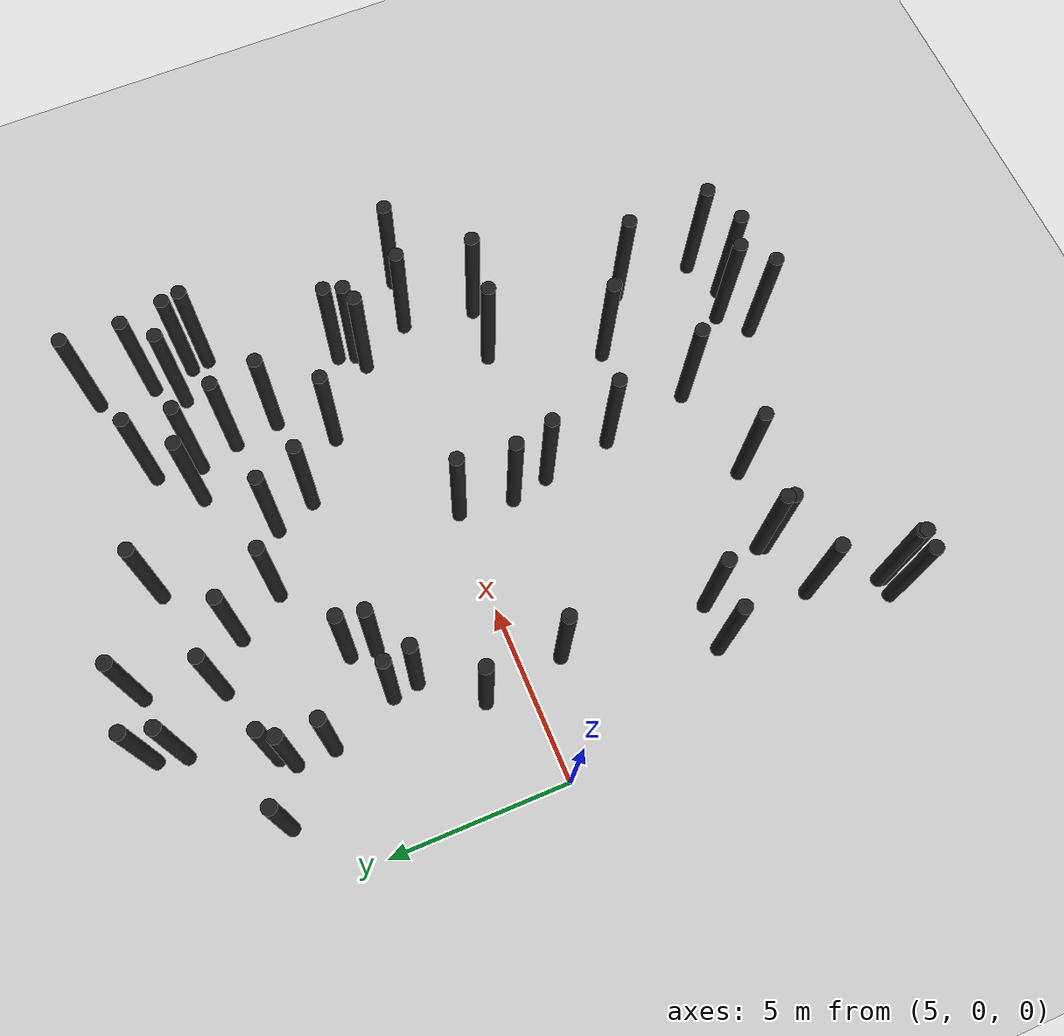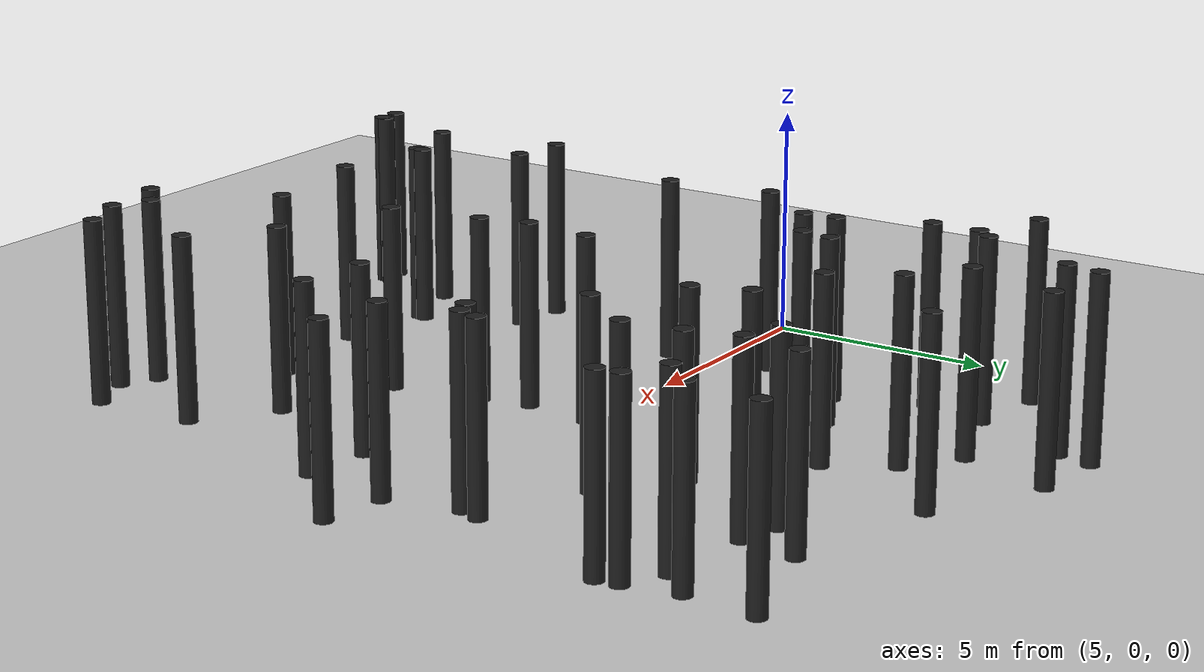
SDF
<sdf version="1.5">
 <world name="default">
  <model name="ground_plane">
   <static>1</static>
   <link name="link">
    <collision name="collision">
     <geometry><plane><normal>0 0 1</normal><size>200 200</size></plane></geometry>
     <surface><friction><ode><mu>100</mu><mu2>50</mu2></ode></friction></surface>
    </collision>
    <visual name="visual">
     <cast_shadows>0</cast_shadows>
     <geometry><plane><normal>0 0 1</normal><size>200 200</size></plane></geometry>
     <material>
      <script><uri>file://media/materials/scripts/gazebo.material</uri><name>Gazebo/Grey</name></script>
     </material>
    </visual>
   </link>
  </model>
  <model name="forest_clone_0">
   <pose>12.895 -0.119089 0.004441 0 -0 0</pose>
   <static>1</static>
   <link name="cylinder::link">
    <inertial>
     <mass>1</mass>
     <inertia><ixx>0.083</ixx><ixy>0</ixy><ixz>0</ixz><iyy>0.083</iyy><iyz>0</iyz><izz>0.083</izz></inertia>
    </inertial>
    <collision name="collision">
     <geometry><cylinder><radius>0.2</radius><length>4</length></cylinder></geometry>
    </collision>
    <visual name="visual">
     <geometry><cylinder><radius>0.2</radius><length>4</length></cylinder></geometry>
     <material>
      <script><uri>file://media/materials/scripts/gazebo.material</uri><name>Gazebo/Black</name></script>
     </material>
    </visual>
    <pose>0 0 2 0 -0 0</pose>
   </link>
  </model>
  <model name="forest_clone_3">
   <pose>15.7148 -9.32065 0.003944 0 -0 0</pose>
   <static>1</static>
   <link name="cylinder::link">
    <inertial>
     <mass>1</mass>
     <inertia><ixx>0.083</ixx><ixy>0</ixy><ixz>0</ixz><iyy>0.083</iyy><iyz>0</iyz><izz>0.083</izz></inertia>
    </inertial>
    <collision name="collision">
     <geometry><cylinder><radius>0.2</radius><length>4</length></cylinder></geometry>
    </collision>
    <visual name="visual">
     <geometry><cylinder><radius>0.2</radius><length>4</length></cylinder></geometry>
     <material>
      <script><uri>file://media/materials/scripts/gazebo.material</uri><name>Gazebo/Black</name></script>
     </material>
    </visual>
    <pose>0 0 2 0 -0 0</pose>
   </link>
  </model>
  <model name="forest_clone_4">
   <pose>9.53524 9.62866 0.001802 0 -0 0</pose>
   <static>1</static>
   <link name="cylinder::link">
    <inertial>
     <mass>1</mass>
     <inertia><ixx>0.083</ixx><ixy>0</ixy><ixz>0</ixz><iyy>0.083</iyy><iyz>0</iyz><izz>0.083</izz></inertia>
    </inertial>
    <collision name="collision">
     <geometry><cylinder><radius>0.2</radius><length>4</length></cylinder></geometry>
    </collision>
    <visual name="visual">
     <geometry><cylinder><radius>0.2</radius><length>4</length></cylinder></geometry>
     <material>
      <script><uri>file://media/materials/scripts/gazebo.material</uri><name>Gazebo/Black</name></script>
     </material>
    </visual>
    <pose>0 0 2 0 -0 0</pose>
   </link>
  </model>
  <model name="forest_clone_12">
   <pose>10.5715 7.4024 -0.003288 0 -0 0</pose>
   <static>1</static>
   <link name="cylinder::link">
    <inertial>
     <mass>1</mass>
     <inertia><ixx>0.083</ixx><ixy>0</ixy><ixz>0</ixz><iyy>0.083</iyy><iyz>0</iyz><izz>0.083</izz></inertia>
    </inertial>
    <collision name="collision">
     <geometry><cylinder><radius>0.2</radius><length>4</length></cylinder></geometry>
    </collision>
    <visual name="visual">
     <geometry><cylinder><radius>0.2</radius><length>4</length></cylinder></geometry>
     <material>
      <script><uri>file://media/materials/scripts/gazebo.material</uri><name>Gazebo/Black</name></script>
     </material>
    </visual>
    <pose>0 0 2 0 -0 0</pose>
   </link>
  </model>
  <model name="forest_clone_16">
   <pose>15.8736 -5.74239 0.003533 0 -0 0</pose>
   <static>1</static>
   <link name="cylinder::link">
    <inertial>
     <mass>1</mass>
     <inertia><ixx>0.083</ixx><ixy>0</ixy><ixz>0</ixz><iyy>0.083</iyy><iyz>0</iyz><izz>0.083</izz></inertia>
    </inertial>
    <collision name="collision">
     <geometry><cylinder><radius>0.2</radius><length>4</length></cylinder></geometry>
    </collision>
    <visual name="visual">
     <geometry><cylinder><radius>0.2</radius><length>4</length></cylinder></geometry>
     <material>
      <script><uri>file://media/materials/scripts/gazebo.material</uri><name>Gazebo/Black</name></script>
     </material>
    </visual>
    <pose>0 0 2 0 -0 0</pose>
   </link>
  </model>
  <model name="forest_clone_17">
   <pose>19.9042 5.30619 -0.004813 0 -0 0</pose>
   <static>1</static>
   <link name="cylinder::link">
    <inertial>
     <mass>1</mass>
     <inertia><ixx>0.083</ixx><ixy>0</ixy><ixz>0</ixz><iyy>0.083</iyy><iyz>0</iyz><izz>0.083</izz></inertia>
    </inertial>
    <collision name="collision">
     <geometry><cylinder><radius>0.2</radius><length>4</length></cylinder></geometry>
    </collision>
    <visual name="visual">
     <geometry><cylinder><radius>0.2</radius><length>4</length></cylinder></geometry>
     <material>
      <script><uri>file://media/materials/scripts/gazebo.material</uri><name>Gazebo/Black</name></script>
     </material>
    </visual>
    <pose>0 0 2 0 -0 0</pose>
   </link>
  </model>
  <model name="forest_clone_24">
   <pose>8.09345 6.32276 0.001507 0 -0 0</pose>
   <static>1</static>
   <link name="cylinder::link">
    <inertial>
     <mass>1</mass>
     <inertia><ixx>0.083</ixx><ixy>0</ixy><ixz>0</ixz><iyy>0.083</iyy><iyz>0</iyz><izz>0.083</izz></inertia>
    </inertial>
    <collision name="collision">
     <geometry><cylinder><radius>0.2</radius><length>4</length></cylinder></geometry>
    </collision>
    <visual name="visual">
     <geometry><cylinder><radius>0.2</radius><length>4</length></cylinder></geometry>
     <material>
      <script><uri>file://media/materials/scripts/gazebo.material</uri><name>Gazebo/Black</name></script>
     </material>
    </visual>
    <pose>0 0 2 0 -0 0</pose>
   </link>
  </model>
  <model name="forest_clone_25">
   <pose>13.8201 -7.30259 -0.001052 0 -0 0</pose>
   <static>1</static>
   <link name="cylinder::link">
    <inertial>
     <mass>1</mass>
     <inertia><ixx>0.083</ixx><ixy>0</ixy><ixz>0</ixz><iyy>0.083</iyy><iyz>0</iyz><izz>0.083</izz></inertia>
    </inertial>
    <collision name="collision">
     <geometry><cylinder><radius>0.2</radius><length>4</length></cylinder></geometry>
    </collision>
    <visual name="visual">
     <geometry><cylinder><radius>0.2</radius><length>4</length></cylinder></geometry>
     <material>
      <script><uri>file://media/materials/scripts/gazebo.material</uri><name>Gazebo/Black</name></script>
     </material>
    </visual>
    <pose>0 0 2 0 -0 0</pose>
   </link>
  </model>
  <model name="forest_clone_28">
   <pose>8.89961 -7.26019 -0.000283 0 -0 0</pose>
   <static>1</static>
   <link name="cylinder::link">
    <inertial>
     <mass>1</mass>
     <inertia><ixx>0.083</ixx><ixy>0</ixy><ixz>0</ixz><iyy>0.083</iyy><iyz>0</iyz><izz>0.083</izz></inertia>
    </inertial>
    <collision name="collision">
     <geometry><cylinder><radius>0.2</radius><length>4</length></cylinder></geometry>
    </collision>
    <visual name="visual">
     <geometry><cylinder><radius>0.2</radius><length>4</length></cylinder></geometry>
     <material>
      <script><uri>file://media/materials/scripts/gazebo.material</uri><name>Gazebo/Black</name></script>
     </material>
    </visual>
    <pose>0 0 2 0 -0 0</pose>
   </link>
  </model>
  <model name="forest_clone_29">
   <pose>14.739 3.50483 -0.00413 0 -0 0</pose>
   <static>1</static>
   <link name="cylinder::link">
    <inertial>
     <mass>1</mass>
     <inertia><ixx>0.083</ixx><ixy>0</ixy><ixz>0</ixz><iyy>0.083</iyy><iyz>0</iyz><izz>0.083</izz></inertia>
    </inertial>
    <collision name="collision">
     <geometry><cylinder><radius>0.2</radius><length>4</length></cylinder></geometry>
    </collision>
    <visual name="visual">
     <geometry><cylinder><radius>0.2</radius><length>4</length></cylinder></geometry>
     <material>
      <script><uri>file://media/materials/scripts/gazebo.material</uri><name>Gazebo/Black</name></script>
     </material>
    </visual>
    <pose>0 0 2 0 -0 0</pose>
   </link>
  </model>
  <model name="forest_clone_30">
   <pose>17.1866 4.89143 -0.004943 0 -0 0</pose>
   <static>1</static>
   <link name="cylinder::link">
    <inertial>
     <mass>1</mass>
     <inertia><ixx>0.083</ixx><ixy>0</ixy><ixz>0</ixz><iyy>0.083</iyy><iyz>0</iyz><izz>0.083</izz></inertia>
    </inertial>
    <collision name="collision">
     <geometry><cylinder><radius>0.2</radius><length>4</length></cylinder></geometry>
    </collision>
    <visual name="visual">
     <geometry><cylinder><radius>0.2</radius><length>4</length></cylinder></geometry>
     <material>
      <script><uri>file://media/materials/scripts/gazebo.material</uri><name>Gazebo/Black</name></script>
     </material>
    </visual>
    <pose>0 0 2 0 -0 0</pose>
   </link>
  </model>
  <model name="forest_clone_33">
   <pose>10.1308 3.35061 7.8e-05 0 -0 0</pose>
   <static>1</static>
   <link name="cylinder::link">
    <inertial>
     <mass>1</mass>
     <inertia><ixx>0.083</ixx><ixy>0</ixy><ixz>0</ixz><iyy>0.083</iyy><iyz>0</iyz><izz>0.083</izz></inertia>
    </inertial>
    <collision name="collision">
     <geometry><cylinder><radius>0.2</radius><length>4</length></cylinder></geometry>
    </collision>
    <visual name="visual">
     <geometry><cylinder><radius>0.2</radius><length>4</length></cylinder></geometry>
     <material>
      <script><uri>file://media/materials/scripts/gazebo.material</uri><name>Gazebo/Black</name></script>
     </material>
    </visual>
    <pose>0 0 2 0 -0 0</pose>
   </link>
  </model>
  <model name="forest_clone_36">
   <pose>8.91176 2.67337 0.003223 0 -0 0</pose>
   <static>1</static>
   <link name="cylinder::link">
    <inertial>
     <mass>1</mass>
     <inertia><ixx>0.083</ixx><ixy>0</ixy><ixz>0</ixz><iyy>0.083</iyy><iyz>0</iyz><izz>0.083</izz></inertia>
    </inertial>
    <collision name="collision">
     <geometry><cylinder><radius>0.2</radius><length>4</length></cylinder></geometry>
    </collision>
    <visual name="visual">
     <geometry><cylinder><radius>0.2</radius><length>4</length></cylinder></geometry>
     <material>
      <script><uri>file://media/materials/scripts/gazebo.material</uri><name>Gazebo/Black</name></script>
     </material>
    </visual>
    <pose>0 0 2 0 -0 0</pose>
   </link>
  </model>
  <model name="forest_clone_37">
   <pose>20.3619 -1.02855 -0.003411 0 -0 0</pose>
   <static>1</static>
   <link name="cylinder::link">
    <inertial>
     <mass>1</mass>
     <inertia><ixx>0.083</ixx><ixy>0</ixy><ixz>0</ixz><iyy>0.083</iyy><iyz>0</iyz><izz>0.083</izz></inertia>
    </inertial>
    <collision name="collision">
     <geometry><cylinder><radius>0.2</radius><length>4</length></cylinder></geometry>
    </collision>
    <visual name="visual">
     <geometry><cylinder><radius>0.2</radius><length>4</length></cylinder></geometry>
     <material>
      <script><uri>file://media/materials/scripts/gazebo.material</uri><name>Gazebo/Black</name></script>
     </material>
    </visual>
    <pose>0 0 2 0 -0 0</pose>
   </link>
  </model>
  <model name="forest_clone_41">
   <pose>19.6946 6.48979 0.004999 0 -0 0</pose>
   <static>1</static>
   <link name="cylinder::link">
    <inertial>
     <mass>1</mass>
     <inertia><ixx>0.083</ixx><ixy>0</ixy><ixz>0</ixz><iyy>0.083</iyy><iyz>0</iyz><izz>0.083</izz></inertia>
    </inertial>
    <collision name="collision">
     <geometry><cylinder><radius>0.2</radius><length>4</length></cylinder></geometry>
    </collision>
    <visual name="visual">
     <geometry><cylinder><radius>0.2</radius><length>4</length></cylinder></geometry>
     <material>
      <script><uri>file://media/materials/scripts/gazebo.material</uri><name>Gazebo/Black</name></script>
     </material>
    </visual>
    <pose>0 0 2 0 -0 0</pose>
   </link>
  </model>
  <model name="forest_clone_43">
   <pose>11.0841 -7.74642 0.00357 0 -0 0</pose>
   <static>1</static>
   <link name="cylinder::link">
    <inertial>
     <mass>1</mass>
     <inertia><ixx>0.083</ixx><ixy>0</ixy><ixz>0</ixz><iyy>0.083</iyy><iyz>0</iyz><izz>0.083</izz></inertia>
    </inertial>
    <collision name="collision">
     <geometry><cylinder><radius>0.2</radius><length>4</length></cylinder></geometry>
    </collision>
    <visual name="visual">
     <geometry><cylinder><radius>0.2</radius><length>4</length></cylinder></geometry>
     <material>
      <script><uri>file://media/materials/scripts/gazebo.material</uri><name>Gazebo/Black</name></script>
     </material>
    </visual>
    <pose>0 0 2 0 -0 0</pose>
   </link>
  </model>
  <model name="forest_clone_44">
   <pose>8.10102 5.26224 0.004867 0 -0 0</pose>
   <static>1</static>
   <link name="cylinder::link">
    <inertial>
     <mass>1</mass>
     <inertia><ixx>0.083</ixx><ixy>0</ixy><ixz>0</ixz><iyy>0.083</iyy><iyz>0</iyz><izz>0.083</izz></inertia>
    </inertial>
    <collision name="collision">
     <geometry><cylinder><radius>0.2</radius><length>4</length></cylinder></geometry>
    </collision>
    <visual name="visual">
     <geometry><cylinder><radius>0.2</radius><length>4</length></cylinder></geometry>
     <material>
      <script><uri>file://media/materials/scripts/gazebo.material</uri><name>Gazebo/Black</name></script>
     </material>
    </visual>
    <pose>0 0 2 0 -0 0</pose>
   </link>
  </model>
  <model name="forest_clone_46">
   <pose>16.478 -9.71496 0.002215 0 -0 0</pose>
   <static>1</static>
   <link name="cylinder::link">
    <inertial>
     <mass>1</mass>
     <inertia><ixx>0.083</ixx><ixy>0</ixy><ixz>0</ixz><iyy>0.083</iyy><iyz>0</iyz><izz>0.083</izz></inertia>
    </inertial>
    <collision name="collision">
     <geometry><cylinder><radius>0.2</radius><length>4</length></cylinder></geometry>
    </collision>
    <visual name="visual">
     <geometry><cylinder><radius>0.2</radius><length>4</length></cylinder></geometry>
     <material>
      <script><uri>file://media/materials/scripts/gazebo.material</uri><name>Gazebo/Black</name></script>
     </material>
    </visual>
    <pose>0 0 2 0 -0 0</pose>
   </link>
  </model>
  <model name="forest_clone_47">
   <pose>17.0673 7.25604 0.001037 0 -0 0</pose>
   <static>1</static>
   <link name="cylinder::link">
    <inertial>
     <mass>1</mass>
     <inertia><ixx>0.083</ixx><ixy>0</ixy><ixz>0</ixz><iyy>0.083</iyy><iyz>0</iyz><izz>0.083</izz></inertia>
    </inertial>
    <collision name="collision">
     <geometry><cylinder><radius>0.2</radius><length>4</length></cylinder></geometry>
    </collision>
    <visual name="visual">
     <geometry><cylinder><radius>0.2</radius><length>4</length></cylinder></geometry>
     <material>
      <script><uri>file://media/materials/scripts/gazebo.material</uri><name>Gazebo/Black</name></script>
     </material>
    </visual>
    <pose>0 0 2 0 -0 0</pose>
   </link>
  </model>
  <model name="forest_clone_49">
   <pose>8.13733 -1.08873 0.002568 0 -0 0</pose>
   <static>1</static>
   <link name="cylinder::link">
    <inertial>
     <mass>1</mass>
     <inertia><ixx>0.083</ixx><ixy>0</ixy><ixz>0</ixz><iyy>0.083</iyy><iyz>0</iyz><izz>0.083</izz></inertia>
    </inertial>
    <collision name="collision">
     <geometry><cylinder><radius>0.2</radius><length>4</length></cylinder></geometry>
    </collision>
    <visual name="visual">
     <geometry><cylinder><radius>0.2</radius><length>4</length></cylinder></geometry>
     <material>
      <script><uri>file://media/materials/scripts/gazebo.material</uri><name>Gazebo/Black</name></script>
     </material>
    </visual>
    <pose>0 0 2 0 -0 0</pose>
   </link>
  </model>
  <model name="forest_clone_50">
   <pose>12.7163 -1.64901 0.000883 0 -0 0</pose>
   <static>1</static>
   <link name="cylinder::link">
    <inertial>
     <mass>1</mass>
     <inertia><ixx>0.083</ixx><ixy>0</ixy><ixz>0</ixz><iyy>0.083</iyy><iyz>0</iyz><izz>0.083</izz></inertia>
    </inertial>
    <collision name="collision">
     <geometry><cylinder><radius>0.2</radius><length>4</length></cylinder></geometry>
    </collision>
    <visual name="visual">
     <geometry><cylinder><radius>0.2</radius><length>4</length></cylinder></geometry>
     <material>
      <script><uri>file://media/materials/scripts/gazebo.material</uri><name>Gazebo/Black</name></script>
     </material>
    </visual>
    <pose>0 0 2 0 -0 0</pose>
   </link>
  </model>
  <model name="forest_clone_52">
   <pose>18.8923 -0.807575 -0.00393 0 -0 0</pose>
   <static>1</static>
   <link name="cylinder::link">
    <inertial>
     <mass>1</mass>
     <inertia><ixx>0.083</ixx><ixy>0</ixy><ixz>0</ixz><iyy>0.083</iyy><iyz>0</iyz><izz>0.083</izz></inertia>
    </inertial>
    <collision name="collision">
     <geometry><cylinder><radius>0.2</radius><length>4</length></cylinder></geometry>
    </collision>
    <visual name="visual">
     <geometry><cylinder><radius>0.2</radius><length>4</length></cylinder></geometry>
     <material>
      <script><uri>file://media/materials/scripts/gazebo.material</uri><name>Gazebo/Black</name></script>
     </material>
    </visual>
    <pose>0 0 2 0 -0 0</pose>
   </link>
  </model>
  <model name="forest_clone_56">
   <pose>13.3333 -4.74511 -0.001684 0 -0 0</pose>
   <static>1</static>
   <link name="cylinder::link">
    <inertial>
     <mass>1</mass>
     <inertia><ixx>0.083</ixx><ixy>0</ixy><ixz>0</ixz><iyy>0.083</iyy><iyz>0</iyz><izz>0.083</izz></inertia>
    </inertial>
    <collision name="collision">
     <geometry><cylinder><radius>0.2</radius><length>4</length></cylinder></geometry>
    </collision>
    <visual name="visual">
     <geometry><cylinder><radius>0.2</radius><length>4</length></cylinder></geometry>
     <material>
      <script><uri>file://media/materials/scripts/gazebo.material</uri><name>Gazebo/Black</name></script>
     </material>
    </visual>
    <pose>0 0 2 0 -0 0</pose>
   </link>
  </model>
  <model name="forest_clone_62">
   <pose>18.6636 1.31163 -0.003035 0 -0 0</pose>
   <static>1</static>
   <link name="cylinder::link">
    <inertial>
     <mass>1</mass>
     <inertia><ixx>0.083</ixx><ixy>0</ixy><ixz>0</ixz><iyy>0.083</iyy><iyz>0</iyz><izz>0.083</izz></inertia>
    </inertial>
    <collision name="collision">
     <geometry><cylinder><radius>0.2</radius><length>4</length></cylinder></geometry>
    </collision>
    <visual name="visual">
     <geometry><cylinder><radius>0.2</radius><length>4</length></cylinder></geometry>
     <material>
      <script><uri>file://media/materials/scripts/gazebo.material</uri><name>Gazebo/Black</name></script>
     </material>
    </visual>
    <pose>0 0 2 0 -0 0</pose>
   </link>
  </model>
  <model name="forest_clone_65">
   <pose>16.9036 5.99752 0.004273 0 -0 0</pose>
   <static>1</static>
   <link name="cylinder::link">
    <inertial>
     <mass>1</mass>
     <inertia><ixx>0.083</ixx><ixy>0</ixy><ixz>0</ixz><iyy>0.083</iyy><iyz>0</iyz><izz>0.083</izz></inertia>
    </inertial>
    <collision name="collision">
     <geometry><cylinder><radius>0.2</radius><length>4</length></cylinder></geometry>
    </collision>
    <visual name="visual">
     <geometry><cylinder><radius>0.2</radius><length>4</length></cylinder></geometry>
     <material>
      <script><uri>file://media/materials/scripts/gazebo.material</uri><name>Gazebo/Black</name></script>
     </material>
    </visual>
    <pose>0 0 2 0 -0 0</pose>
   </link>
  </model>
  <model name="forest_clone_66">
   <pose>14.3192 4.64638 -0.00458 0 -0 0</pose>
   <static>1</static>
   <link name="cylinder::link">
    <inertial>
     <mass>1</mass>
     <inertia><ixx>0.083</ixx><ixy>0</ixy><ixz>0</ixz><iyy>0.083</iyy><iyz>0</iyz><izz>0.083</izz></inertia>
    </inertial>
    <collision name="collision">
     <geometry><cylinder><radius>0.2</radius><length>4</length></cylinder></geometry>
    </collision>
    <visual name="visual">
     <geometry><cylinder><radius>0.2</radius><length>4</length></cylinder></geometry>
     <material>
      <script><uri>file://media/materials/scripts/gazebo.material</uri><name>Gazebo/Black</name></script>
     </material>
    </visual>
    <pose>0 0 2 0 -0 0</pose>
   </link>
  </model>
  <model name="forest_clone_69">
   <pose>18.5734 -2.83463 0.00215 0 -0 0</pose>
   <static>1</static>
   <link name="cylinder::link">
    <inertial>
     <mass>1</mass>
     <inertia><ixx>0.083</ixx><ixy>0</ixy><ixz>0</ixz><iyy>0.083</iyy><iyz>0</iyz><izz>0.083</izz></inertia>
    </inertial>
    <collision name="collision">
     <geometry><cylinder><radius>0.2</radius><length>4</length></cylinder></geometry>
    </collision>
    <visual name="visual">
     <geometry><cylinder><radius>0.2</radius><length>4</length></cylinder></geometry>
     <material>
      <script><uri>file://media/materials/scripts/gazebo.material</uri><name>Gazebo/Black</name></script>
     </material>
    </visual>
    <pose>0 0 2 0 -0 0</pose>
   </link>
  </model>
  <model name="forest_clone_70">
   <pose>7.26808 -7.90671 -0.004214 0 -0 0</pose>
   <static>1</static>
   <link name="cylinder::link">
    <inertial>
     <mass>1</mass>
     <inertia><ixx>0.083</ixx><ixy>0</ixy><ixz>0</ixz><iyy>0.083</iyy><iyz>0</iyz><izz>0.083</izz></inertia>
    </inertial>
    <collision name="collision">
     <geometry><cylinder><radius>0.2</radius><length>4</length></cylinder></geometry>
    </collision>
    <visual name="visual">
     <geometry><cylinder><radius>0.2</radius><length>4</length></cylinder></geometry>
     <material>
      <script><uri>file://media/materials/scripts/gazebo.material</uri><name>Gazebo/Black</name></script>
     </material>
    </visual>
    <pose>0 0 2 0 -0 0</pose>
   </link>
  </model>
  <model name="forest_clone_71">
   <pose>9.34179 8.84565 -0.003508 0 -0 0</pose>
   <static>1</static>
   <link name="cylinder::link">
    <inertial>
     <mass>1</mass>
     <inertia><ixx>0.083</ixx><ixy>0</ixy><ixz>0</ixz><iyy>0.083</iyy><iyz>0</iyz><izz>0.083</izz></inertia>
    </inertial>
    <collision name="collision">
     <geometry><cylinder><radius>0.2</radius><length>4</length></cylinder></geometry>
    </collision>
    <visual name="visual">
     <geometry><cylinder><radius>0.2</radius><length>4</length></cylinder></geometry>
     <material>
      <script><uri>file://media/materials/scripts/gazebo.material</uri><name>Gazebo/Black</name></script>
     </material>
    </visual>
    <pose>0 0 2 0 -0 0</pose>
   </link>
  </model>
  <model name="forest_clone_72">
   <pose>8.85757 -7.4371 -0.003389 0 -0 0</pose>
   <static>1</static>
   <link name="cylinder::link">
    <inertial>
     <mass>1</mass>
     <inertia><ixx>0.083</ixx><ixy>0</ixy><ixz>0</ixz><iyy>0.083</iyy><iyz>0</iyz><izz>0.083</izz></inertia>
    </inertial>
    <collision name="collision">
     <geometry><cylinder><radius>0.2</radius><length>4</length></cylinder></geometry>
    </collision>
    <visual name="visual">
     <geometry><cylinder><radius>0.2</radius><length>4</length></cylinder></geometry>
     <material>
      <script><uri>file://media/materials/scripts/gazebo.material</uri><name>Gazebo/Black</name></script>
     </material>
    </visual>
    <pose>0 0 2 0 -0 0</pose>
   </link>
  </model>
  <model name="forest_clone_81">
   <pose>11.2344 9.44016 -0.001796 0 -0 0</pose>
   <static>1</static>
   <link name="cylinder::link">
    <inertial>
     <mass>1</mass>
     <inertia><ixx>0.083</ixx><ixy>0</ixy><ixz>0</ixz><iyy>0.083</iyy><iyz>0</iyz><izz>0.083</izz></inertia>
    </inertial>
    <collision name="collision">
     <geometry><cylinder><radius>0.2</radius><length>4</length></cylinder></geometry>
    </collision>
    <visual name="visual">
     <geometry><cylinder><radius>0.2</radius><length>4</length></cylinder></geometry>
     <material>
      <script><uri>file://media/materials/scripts/gazebo.material</uri><name>Gazebo/Black</name></script>
     </material>
    </visual>
    <pose>0 0 2 0 -0 0</pose>
   </link>
  </model>
  <model name="forest_clone_85">
   <pose>18.0941 0.661912 0.001033 0 -0 0</pose>
   <static>1</static>
   <link name="cylinder::link">
    <inertial>
     <mass>1</mass>
     <inertia><ixx>0.083</ixx><ixy>0</ixy><ixz>0</ixz><iyy>0.083</iyy><iyz>0</iyz><izz>0.083</izz></inertia>
    </inertial>
    <collision name="collision">
     <geometry><cylinder><radius>0.2</radius><length>4</length></cylinder></geometry>
    </collision>
    <visual name="visual">
     <geometry><cylinder><radius>0.2</radius><length>4</length></cylinder></geometry>
     <material>
      <script><uri>file://media/materials/scripts/gazebo.material</uri><name>Gazebo/Black</name></script>
     </material>
    </visual>
    <pose>0 0 2 0 -0 0</pose>
   </link>
  </model>
  <model name="forest_clone_87">
   <pose>7.9749 -5.21284 -0.002416 0 -0 0</pose>
   <static>1</static>
   <link name="cylinder::link">
    <inertial>
     <mass>1</mass>
     <inertia><ixx>0.083</ixx><ixy>0</ixy><ixz>0</ixz><iyy>0.083</iyy><iyz>0</iyz><izz>0.083</izz></inertia>
    </inertial>
    <collision name="collision">
     <geometry><cylinder><radius>0.2</radius><length>4</length></cylinder></geometry>
    </collision>
    <visual name="visual">
     <geometry><cylinder><radius>0.2</radius><length>4</length></cylinder></geometry>
     <material>
      <script><uri>file://media/materials/scripts/gazebo.material</uri><name>Gazebo/Black</name></script>
     </material>
    </visual>
    <pose>0 0 2 0 -0 0</pose>
   </link>
  </model>
  <model name="forest_clone_103">
   <pose>6.85426 -9.88108 -0.003503 0 -0 0</pose>
   <static>1</static>
   <link name="cylinder::link">
    <inertial>
     <mass>1</mass>
     <inertia><ixx>0.083</ixx><ixy>0</ixy><ixz>0</ixz><iyy>0.083</iyy><iyz>0</iyz><izz>0.083</izz></inertia>
    </inertial>
    <collision name="collision">
     <geometry><cylinder><radius>0.2</radius><length>4</length></cylinder></geometry>
    </collision>
    <visual name="visual">
     <geometry><cylinder><radius>0.2</radius><length>4</length></cylinder></geometry>
     <material>
      <script><uri>file://media/materials/scripts/gazebo.material</uri><name>Gazebo/Black</name></script>
     </material>
    </visual>
    <pose>0 0 2 0 -0 0</pose>
   </link>
  </model>
  <model name="forest_clone_105">
   <pose>19.9797 4.81925 0.002722 0 -0 0</pose>
   <static>1</static>
   <link name="cylinder::link">
    <inertial>
     <mass>1</mass>
     <inertia><ixx>0.083</ixx><ixy>0</ixy><ixz>0</ixz><iyy>0.083</iyy><iyz>0</iyz><izz>0.083</izz></inertia>
    </inertial>
    <collision name="collision">
     <geometry><cylinder><radius>0.2</radius><length>4</length></cylinder></geometry>
    </collision>
    <visual name="visual">
     <geometry><cylinder><radius>0.2</radius><length>4</length></cylinder></geometry>
     <material>
      <script><uri>file://media/materials/scripts/gazebo.material</uri><name>Gazebo/Black</name></script>
     </material>
    </visual>
    <pose>0 0 2 0 -0 0</pose>
   </link>
  </model>
  <model name="forest_clone_109">
   <pose>17.5696 -9.24883 0.00034 0 -0 0</pose>
   <static>1</static>
   <link name="cylinder::link">
    <inertial>
     <mass>1</mass>
     <inertia><ixx>0.083</ixx><ixy>0</ixy><ixz>0</ixz><iyy>0.083</iyy><iyz>0</iyz><izz>0.083</izz></inertia>
    </inertial>
    <collision name="collision">
     <geometry><cylinder><radius>0.2</radius><length>4</length></cylinder></geometry>
    </collision>
    <visual name="visual">
     <geometry><cylinder><radius>0.2</radius><length>4</length></cylinder></geometry>
     <material>
      <script><uri>file://media/materials/scripts/gazebo.material</uri><name>Gazebo/Black</name></script>
     </material>
    </visual>
    <pose>0 0 2 0 -0 0</pose>
   </link>
  </model>
  <model name="forest_clone_110">
   <pose>6.83197 -9.98813 -0.002462 0 -0 0</pose>
   <static>1</static>
   <link name="cylinder::link">
    <inertial>
     <mass>1</mass>
     <inertia><ixx>0.083</ixx><ixy>0</ixy><ixz>0</ixz><iyy>0.083</iyy><iyz>0</iyz><izz>0.083</izz></inertia>
    </inertial>
    <collision name="collision">
     <geometry><cylinder><radius>0.2</radius><length>4</length></cylinder></geometry>
    </collision>
    <visual name="visual">
     <geometry><cylinder><radius>0.2</radius><length>4</length></cylinder></geometry>
     <material>
      <script><uri>file://media/materials/scripts/gazebo.material</uri><name>Gazebo/Black</name></script>
     </material>
    </visual>
    <pose>0 0 2 0 -0 0</pose>
   </link>
  </model>
  <model name="forest_clone_112">
   <pose>19.0234 5.77711 -0.002814 0 -0 0</pose>
   <static>1</static>
   <link name="cylinder::link">
    <inertial>
     <mass>1</mass>
     <inertia><ixx>0.083</ixx><ixy>0</ixy><ixz>0</ixz><iyy>0.083</iyy><iyz>0</iyz><izz>0.083</izz></inertia>
    </inertial>
    <collision name="collision">
     <geometry><cylinder><radius>0.2</radius><length>4</length></cylinder></geometry>
    </collision>
    <visual name="visual">
     <geometry><cylinder><radius>0.2</radius><length>4</length></cylinder></geometry>
     <material>
      <script><uri>file://media/materials/scripts/gazebo.material</uri><name>Gazebo/Black</name></script>
     </material>
    </visual>
    <pose>0 0 2 0 -0 0</pose>
   </link>
  </model>
  <model name="forest_clone_115">
   <pose>6.76561 -5.0436 -0.004108 0 -0 0</pose>
   <static>1</static>
   <link name="cylinder::link">
    <inertial>
     <mass>1</mass>
     <inertia><ixx>0.083</ixx><ixy>0</ixy><ixz>0</ixz><iyy>0.083</iyy><iyz>0</iyz><izz>0.083</izz></inertia>
    </inertial>
    <collision name="collision">
     <geometry><cylinder><radius>0.2</radius><length>4</length></cylinder></geometry>
    </collision>
    <visual name="visual">
     <geometry><cylinder><radius>0.2</radius><length>4</length></cylinder></geometry>
     <material>
      <script><uri>file://media/materials/scripts/gazebo.material</uri><name>Gazebo/Black</name></script>
     </material>
    </visual>
    <pose>0 0 2 0 -0 0</pose>
   </link>
  </model>
  <model name="forest_clone_118">
   <pose>18.5068 0.825834 -0.00185 0 -0 0</pose>
   <static>1</static>
   <link name="cylinder::link">
    <inertial>
     <mass>1</mass>
     <inertia><ixx>0.083</ixx><ixy>0</ixy><ixz>0</ixz><iyy>0.083</iyy><iyz>0</iyz><izz>0.083</izz></inertia>
    </inertial>
    <collision name="collision">
     <geometry><cylinder><radius>0.2</radius><length>4</length></cylinder></geometry>
    </collision>
    <visual name="visual">
     <geometry><cylinder><radius>0.2</radius><length>4</length></cylinder></geometry>
     <material>
      <script><uri>file://media/materials/scripts/gazebo.material</uri><name>Gazebo/Black</name></script>
     </material>
    </visual>
    <pose>0 0 2 0 -0 0</pose>
   </link>
  </model>
  <model name="forest_clone_119">
   <pose>17.4802 -6.907 0.003437 0 -0 0</pose>
   <static>1</static>
   <link name="cylinder::link">
    <inertial>
     <mass>1</mass>
     <inertia><ixx>0.083</ixx><ixy>0</ixy><ixz>0</ixz><iyy>0.083</iyy><iyz>0</iyz><izz>0.083</izz></inertia>
    </inertial>
    <collision name="collision">
     <geometry><cylinder><radius>0.2</radius><length>4</length></cylinder></geometry>
    </collision>
    <visual name="visual">
     <geometry><cylinder><radius>0.2</radius><length>4</length></cylinder></geometry>
     <material>
      <script><uri>file://media/materials/scripts/gazebo.material</uri><name>Gazebo/Black</name></script>
     </material>
    </visual>
    <pose>0 0 2 0 -0 0</pose>
   </link>
  </model>
  <model name="forest_clone_123">
   <pose>17.3648 3.63026 -3.8e-05 0 -0 0</pose>
   <static>1</static>
   <link name="cylinder::link">
    <inertial>
     <mass>1</mass>
     <inertia><ixx>0.083</ixx><ixy>0</ixy><ixz>0</ixz><iyy>0.083</iyy><iyz>0</iyz><izz>0.083</izz></inertia>
    </inertial>
    <collision name="collision">
     <geometry><cylinder><radius>0.2</radius><length>4</length></cylinder></geometry>
    </collision>
    <visual name="visual">
     <geometry><cylinder><radius>0.2</radius><length>4</length></cylinder></geometry>
     <material>
      <script><uri>file://media/materials/scripts/gazebo.material</uri><name>Gazebo/Black</name></script>
     </material>
    </visual>
    <pose>0 0 2 0 -0 0</pose>
   </link>
  </model>
  <model name="forest_clone_124">
   <pose>8.40405 6.67828 0.002251 0 -0 0</pose>
   <static>1</static>
   <link name="cylinder::link">
    <inertial>
     <mass>1</mass>
     <inertia><ixx>0.083</ixx><ixy>0</ixy><ixz>0</ixz><iyy>0.083</iyy><iyz>0</iyz><izz>0.083</izz></inertia>
    </inertial>
    <collision name="collision">
     <geometry><cylinder><radius>0.2</radius><length>4</length></cylinder></geometry>
    </collision>
    <visual name="visual">
     <geometry><cylinder><radius>0.2</radius><length>4</length></cylinder></geometry>
     <material>
      <script><uri>file://media/materials/scripts/gazebo.material</uri><name>Gazebo/Black</name></script>
     </material>
    </visual>
    <pose>0 0 2 0 -0 0</pose>
   </link>
  </model>
  <model name="forest_clone_125">
   <pose>13.7255 8.14775 0.003147 0 -0 0</pose>
   <static>1</static>
   <link name="cylinder::link">
    <inertial>
     <mass>1</mass>
     <inertia><ixx>0.083</ixx><ixy>0</ixy><ixz>0</ixz><iyy>0.083</iyy><iyz>0</iyz><izz>0.083</izz></inertia>
    </inertial>
    <collision name="collision">
     <geometry><cylinder><radius>0.2</radius><length>4</length></cylinder></geometry>
    </collision>
    <visual name="visual">
     <geometry><cylinder><radius>0.2</radius><length>4</length></cylinder></geometry>
     <material>
      <script><uri>file://media/materials/scripts/gazebo.material</uri><name>Gazebo/Black</name></script>
     </material>
    </visual>
    <pose>0 0 2 0 -0 0</pose>
   </link>
  </model>
  <model name="forest_clone_126">
   <pose>14.9732 -9.99775 -0.003054 0 -0 0</pose>
   <static>1</static>
   <link name="cylinder::link">
    <inertial>
     <mass>1</mass>
     <inertia><ixx>0.083</ixx><ixy>0</ixy><ixz>0</ixz><iyy>0.083</iyy><iyz>0</iyz><izz>0.083</izz></inertia>
    </inertial>
    <collision name="collision">
     <geometry><cylinder><radius>0.2</radius><length>4</length></cylinder></geometry>
    </collision>
    <visual name="visual">
     <geometry><cylinder><radius>0.2</radius><length>4</length></cylinder></geometry>
     <material>
      <script><uri>file://media/materials/scripts/gazebo.material</uri><name>Gazebo/Black</name></script>
     </material>
    </visual>
    <pose>0 0 2 0 -0 0</pose>
   </link>
  </model>
  <model name="forest_clone_129">
   <pose>19.8127 8.07517 -0.002853 0 -0 0</pose>
   <static>1</static>
   <link name="cylinder::link">
    <inertial>
     <mass>1</mass>
     <inertia><ixx>0.083</ixx><ixy>0</ixy><ixz>0</ixz><iyy>0.083</iyy><iyz>0</iyz><izz>0.083</izz></inertia>
    </inertial>
    <collision name="collision">
     <geometry><cylinder><radius>0.2</radius><length>4</length></cylinder></geometry>
    </collision>
    <visual name="visual">
     <geometry><cylinder><radius>0.2</radius><length>4</length></cylinder></geometry>
     <material>
      <script><uri>file://media/materials/scripts/gazebo.material</uri><name>Gazebo/Black</name></script>
     </material>
    </visual>
    <pose>0 0 2 0 -0 0</pose>
   </link>
  </model>
  <model name="forest_clone_131">
   <pose>12.571 5.22092 0.004894 0 -0 0</pose>
   <static>1</static>
   <link name="cylinder::link">
    <inertial>
     <mass>1</mass>
     <inertia><ixx>0.083</ixx><ixy>0</ixy><ixz>0</ixz><iyy>0.083</iyy><iyz>0</iyz><izz>0.083</izz></inertia>
    </inertial>
    <collision name="collision">
     <geometry><cylinder><radius>0.2</radius><length>4</length></cylinder></geometry>
    </collision>
    <visual name="visual">
     <geometry><cylinder><radius>0.2</radius><length>4</length></cylinder></geometry>
     <material>
      <script><uri>file://media/materials/scripts/gazebo.material</uri><name>Gazebo/Black</name></script>
     </material>
    </visual>
    <pose>0 0 2 0 -0 0</pose>
   </link>
  </model>
  <model name="forest_clone_132">
   <pose>11.7814 6.55009 0.004056 0 -0 0</pose>
   <static>1</static>
   <link name="cylinder::link">
    <inertial>
     <mass>1</mass>
     <inertia><ixx>0.083</ixx><ixy>0</ixy><ixz>0</ixz><iyy>0.083</iyy><iyz>0</iyz><izz>0.083</izz></inertia>
    </inertial>
    <collision name="collision">
     <geometry><cylinder><radius>0.2</radius><length>4</length></cylinder></geometry>
    </collision>
    <visual name="visual">
     <geometry><cylinder><radius>0.2</radius><length>4</length></cylinder></geometry>
     <material>
      <script><uri>file://media/materials/scripts/gazebo.material</uri><name>Gazebo/Black</name></script>
     </material>
    </visual>
    <pose>0 0 2 0 -0 0</pose>
   </link>
  </model>
  <model name="forest_clone_134">
   <pose>8.80034 3.38706 -0.00307 0 -0 0</pose>
   <static>1</static>
   <link name="cylinder::link">
    <inertial>
     <mass>1</mass>
     <inertia><ixx>0.083</ixx><ixy>0</ixy><ixz>0</ixz><iyy>0.083</iyy><iyz>0</iyz><izz>0.083</izz></inertia>
    </inertial>
    <collision name="collision">
     <geometry><cylinder><radius>0.2</radius><length>4</length></cylinder></geometry>
    </collision>
    <visual name="visual">
     <geometry><cylinder><radius>0.2</radius><length>4</length></cylinder></geometry>
     <material>
      <script><uri>file://media/materials/scripts/gazebo.material</uri><name>Gazebo/Black</name></script>
     </material>
    </visual>
    <pose>0 0 2 0 -0 0</pose>
   </link>
  </model>
  <model name="forest_clone_136">
   <pose>12.9604 -2.72889 -0.003016 0 -0 0</pose>
   <static>1</static>
   <link name="cylinder::link">
    <inertial>
     <mass>1</mass>
     <inertia><ixx>0.083</ixx><ixy>0</ixy><ixz>0</ixz><iyy>0.083</iyy><iyz>0</iyz><izz>0.083</izz></inertia>
    </inertial>
    <collision name="collision">
     <geometry><cylinder><radius>0.2</radius><length>4</length></cylinder></geometry>
    </collision>
    <visual name="visual">
     <geometry><cylinder><radius>0.2</radius><length>4</length></cylinder></geometry>
     <material>
      <script><uri>file://media/materials/scripts/gazebo.material</uri><name>Gazebo/Black</name></script>
     </material>
    </visual>
    <pose>0 0 2 0 -0 0</pose>
   </link>
  </model>
  <model name="forest_clone_139">
   <pose>15.9664 6.24001 0.004545 0 -0 0</pose>
   <static>1</static>
   <link name="cylinder::link">
    <inertial>
     <mass>1</mass>
     <inertia><ixx>0.083</ixx><ixy>0</ixy><ixz>0</ixz><iyy>0.083</iyy><iyz>0</iyz><izz>0.083</izz></inertia>
    </inertial>
    <collision name="collision">
     <geometry><cylinder><radius>0.2</radius><length>4</length></cylinder></geometry>
    </collision>
    <visual name="visual">
     <geometry><cylinder><radius>0.2</radius><length>4</length></cylinder></geometry>
     <material>
      <script><uri>file://media/materials/scripts/gazebo.material</uri><name>Gazebo/Black</name></script>
     </material>
    </visual>
    <pose>0 0 2 0 -0 0</pose>
   </link>
  </model>
  <model name="forest_clone_140">
   <pose>17.0364 -2.67085 -0.001822 0 -0 0</pose>
   <static>1</static>
   <link name="cylinder::link">
    <inertial>
     <mass>1</mass>
     <inertia><ixx>0.083</ixx><ixy>0</ixy><ixz>0</ixz><iyy>0.083</iyy><iyz>0</iyz><izz>0.083</izz></inertia>
    </inertial>
    <collision name="collision">
     <geometry><cylinder><radius>0.2</radius><length>4</length></cylinder></geometry>
    </collision>
    <visual name="visual">
     <geometry><cylinder><radius>0.2</radius><length>4</length></cylinder></geometry>
     <material>
      <script><uri>file://media/materials/scripts/gazebo.material</uri><name>Gazebo/Black</name></script>
     </material>
    </visual>
    <pose>0 0 2 0 -0 0</pose>
   </link>
  </model>
  <model name="forest_clone_141">
   <pose>10.2588 4.05345 0.001418 0 -0 0</pose>
   <static>1</static>
   <link name="cylinder::link">
    <inertial>
     <mass>1</mass>
     <inertia><ixx>0.083</ixx><ixy>0</ixy><ixz>0</ixz><iyy>0.083</iyy><iyz>0</iyz><izz>0.083</izz></inertia>
    </inertial>
    <collision name="collision">
     <geometry><cylinder><radius>0.2</radius><length>4</length></cylinder></geometry>
    </collision>
    <visual name="visual">
     <geometry><cylinder><radius>0.2</radius><length>4</length></cylinder></geometry>
     <material>
      <script><uri>file://media/materials/scripts/gazebo.material</uri><name>Gazebo/Black</name></script>
     </material>
    </visual>
    <pose>0 0 2 0 -0 0</pose>
   </link>
  </model>
  <model name="forest_clone_142">
   <pose>7.75681 1.2036 0.001801 0 -0 0</pose>
   <static>1</static>
   <link name="cylinder::link">
    <inertial>
     <mass>1</mass>
     <inertia><ixx>0.083</ixx><ixy>0</ixy><ixz>0</ixz><iyy>0.083</iyy><iyz>0</iyz><izz>0.083</izz></inertia>
    </inertial>
    <collision name="collision">
     <geometry><cylinder><radius>0.2</radius><length>4</length></cylinder></geometry>
    </collision>
    <visual name="visual">
     <geometry><cylinder><radius>0.2</radius><length>4</length></cylinder></geometry>
     <material>
      <script><uri>file://media/materials/scripts/gazebo.material</uri><name>Gazebo/Black</name></script>
     </material>
    </visual>
    <pose>0 0 2 0 -0 0</pose>
   </link>
  </model>
  <model name="forest_clone_144">
   <pose>6.35131 -9.967 0.00207 0 -0 0</pose>
   <static>1</static>
   <link name="cylinder::link">
    <inertial>
     <mass>1</mass>
     <inertia><ixx>0.083</ixx><ixy>0</ixy><ixz>0</ixz><iyy>0.083</iyy><iyz>0</iyz><izz>0.083</izz></inertia>
    </inertial>
    <collision name="collision">
     <geometry><cylinder><radius>0.2</radius><length>4</length></cylinder></geometry>
    </collision>
    <visual name="visual">
     <geometry><cylinder><radius>0.2</radius><length>4</length></cylinder></geometry>
     <material>
      <script><uri>file://media/materials/scripts/gazebo.material</uri><name>Gazebo/Black</name></script>
     </material>
    </visual>
    <pose>0 0 2 0 -0 0</pose>
   </link>
  </model>
  <model name="forest_clone_147">
   <pose>16.2942 2.25874 -0.001383 0 -0 0</pose>
   <static>1</static>
   <link name="cylinder::link">
    <inertial>
     <mass>1</mass>
     <inertia><ixx>0.083</ixx><ixy>0</ixy><ixz>0</ixz><iyy>0.083</iyy><iyz>0</iyz><izz>0.083</izz></inertia>
    </inertial>
    <collision name="collision">
     <geometry><cylinder><radius>0.2</radius><length>4</length></cylinder></geometry>
    </collision>
    <visual name="visual">
     <geometry><cylinder><radius>0.2</radius><length>4</length></cylinder></geometry>
     <material>
      <script><uri>file://media/materials/scripts/gazebo.material</uri><name>Gazebo/Black</name></script>
     </material>
    </visual>
    <pose>0 0 2 0 -0 0</pose>
   </link>
  </model>
  <model name="forest_clone_148">
   <pose>6.62029 6.96001 -0.001038 0 -0 0</pose>
   <static>1</static>
   <link name="cylinder::link">
    <inertial>
     <mass>1</mass>
     <inertia><ixx>0.083</ixx><ixy>0</ixy><ixz>0</ixz><iyy>0.083</iyy><iyz>0</iyz><izz>0.083</izz></inertia>
    </inertial>
    <collision name="collision">
     <geometry><cylinder><radius>0.2</radius><length>4</length></cylinder></geometry>
    </collision>
    <visual name="visual">
     <geometry><cylinder><radius>0.2</radius><length>4</length></cylinder></geometry>
     <material>
      <script><uri>file://media/materials/scripts/gazebo.material</uri><name>Gazebo/Black</name></script>
     </material>
    </visual>
    <pose>0 0 2 0 -0 0</pose>
   </link>
  </model>
 </world>
</sdf>
